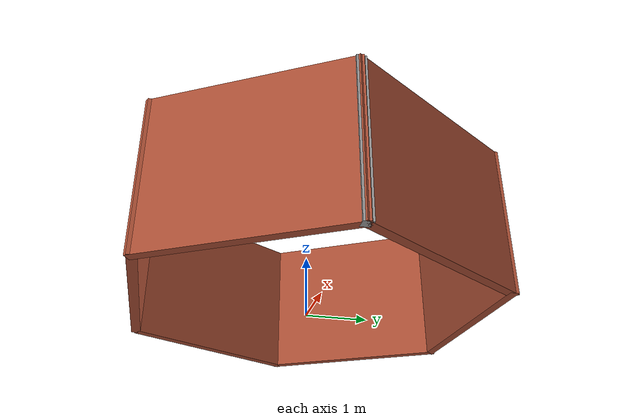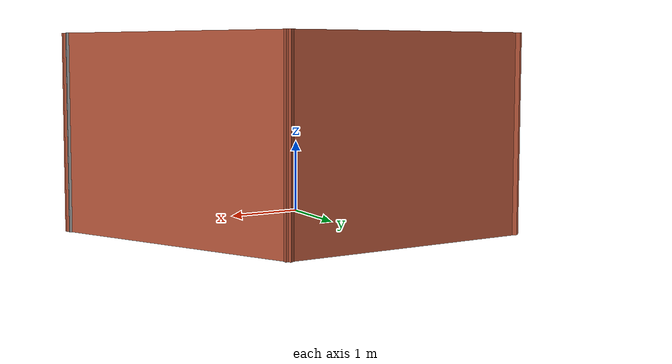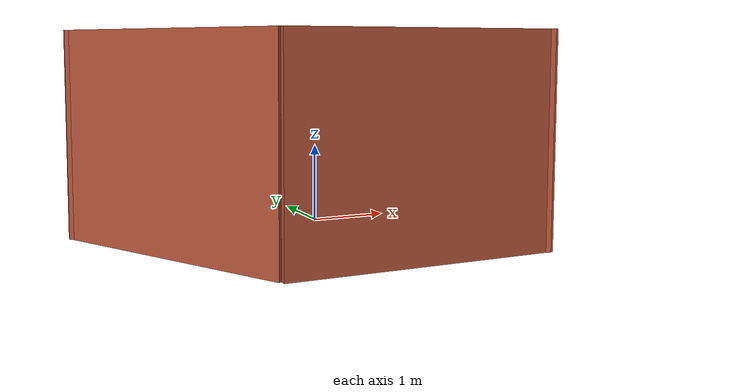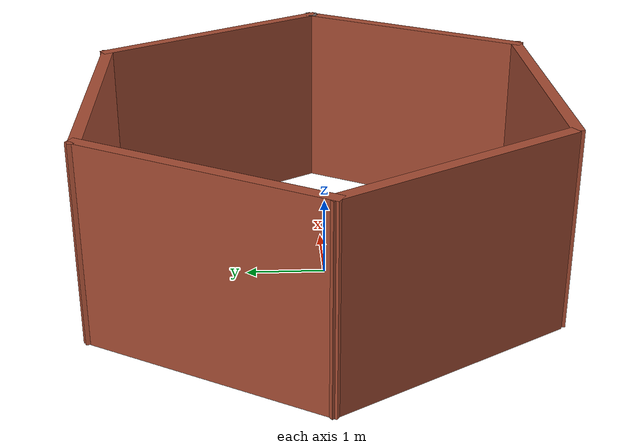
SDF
<?xml version='1.0'?>
<sdf version='1.7'>
  <model name='s6'>
    <pose>0.060122 0.045122 0 0 -0 0</pose>
    <link name='Wall_16'>
      <collision name='Wall_16_Collision'>
        <geometry>
          <box>
            <size>3.25 0.15 2.5</size>
          </box>
        </geometry>
        <pose>0 0 1.25 0 -0 0</pose>
      </collision>
      <visual name='Wall_16_Visual'>
        <pose>0 0 1.25 0 -0 0</pose>
        <geometry>
          <box>
            <size>3.25 0.15 2.5</size>
          </box>
        </geometry>
        <material>
          <script>
            <uri>file://media/materials/scripts/gazebo.material</uri>
            <name>Gazebo/Bricks</name>
          </script>
          <ambient>1 1 1 1</ambient>
        </material>
        <meta>
          <layer>0</layer>
        </meta>
      </visual>
      <pose>-0.040122 2.72488 0 0 -0 0</pose>
    </link>
    <link name='Wall_18'>
      <collision name='Wall_18_Collision'>
        <geometry>
          <box>
            <size>3.25 0.15 2.5</size>
          </box>
        </geometry>
        <pose>0 0 1.25 0 -0 0</pose>
      </collision>
      <visual name='Wall_18_Visual'>
        <pose>0 0 1.25 0 -0 0</pose>
        <geometry>
          <box>
            <size>3.25 0.15 2.5</size>
          </box>
        </geometry>
        <material>
          <script>
            <uri>file://media/materials/scripts/gazebo.material</uri>
            <name>Gazebo/Bricks</name>
          </script>
          <ambient>1 1 1 1</ambient>
        </material>
        <meta>
          <layer>0</layer>
        </meta>
      </visual>
      <pose>-2.36512 1.38254 0 0 -0 -2.0944</pose>
    </link>
    <link name='Wall_19'>
      <collision name='Wall_19_Collision'>
        <geometry>
          <box>
            <size>3.25 0.15 2.5</size>
          </box>
        </geometry>
        <pose>0 0 1.25 0 -0 0</pose>
      </collision>
      <visual name='Wall_19_Visual'>
        <pose>0 0 1.25 0 -0 0</pose>
        <geometry>
          <box>
            <size>3.25 0.15 2.5</size>
          </box>
        </geometry>
        <material>
          <script>
            <uri>file://media/materials/scripts/gazebo.material</uri>
            <name>Gazebo/Bricks</name>
          </script>
          <ambient>1 1 1 1</ambient>
        </material>
        <meta>
          <layer>0</layer>
        </meta>
      </visual>
      <pose>-2.36512 -1.30214 0 0 -0 -1.0472</pose>
    </link>
    <link name='Wall_22'>
      <collision name='Wall_22_Collision'>
        <geometry>
          <box>
            <size>3.25 0.15 2.5</size>
          </box>
        </geometry>
        <pose>0 0 1.25 0 -0 0</pose>
      </collision>
      <visual name='Wall_22_Visual'>
        <pose>0 0 1.25 0 -0 0</pose>
        <geometry>
          <box>
            <size>3.25 0.15 2.5</size>
          </box>
        </geometry>
        <material>
          <script>
            <uri>file://media/materials/scripts/gazebo.material</uri>
            <name>Gazebo/Bricks</name>
          </script>
          <ambient>1 1 1 1</ambient>
        </material>
        <meta>
          <layer>0</layer>
        </meta>
      </visual>
      <pose>0.039878 -2.72512 0 0 -0 3.14159</pose>
    </link>
    <link name='Wall_24'>
      <collision name='Wall_24_Collision'>
        <geometry>
          <box>
            <size>3.25 0.15 2.5</size>
          </box>
        </geometry>
        <pose>0 0 1.25 0 -0 0</pose>
      </collision>
      <visual name='Wall_24_Visual'>
        <pose>0 0 1.25 0 -0 0</pose>
        <geometry>
          <box>
            <size>3.25 0.15 2.5</size>
          </box>
        </geometry>
        <material>
          <script>
            <uri>file://media/materials/scripts/gazebo.material</uri>
            <name>Gazebo/Bricks</name>
          </script>
          <ambient>1 1 1 1</ambient>
        </material>
        <meta>
          <layer>0</layer>
        </meta>
      </visual>
      <pose>2.36488 -1.38278 0 0 -0 1.0472</pose>
    </link>
    <link name='Wall_25'>
      <collision name='Wall_25_Collision'>
        <geometry>
          <box>
            <size>0.15 0.15 2.5</size>
          </box>
        </geometry>
        <pose>0 0 1.25 0 -0 0</pose>
      </collision>
      <visual name='Wall_25_Visual'>
        <pose>0 0 1.25 0 -0 0</pose>
        <geometry>
          <box>
            <size>0.15 0.15 2.5</size>
          </box>
        </geometry>
        <material>
          <script>
            <uri>file://media/materials/scripts/gazebo.material</uri>
            <name>Gazebo/Grey</name>
          </script>
          <ambient>1 1 1 1</ambient>
        </material>
        <meta>
          <layer>0</layer>
        </meta>
      </visual>
      <pose>3.13988 -0.040443 0 0 -0 0</pose>
    </link>
    <link name='Wall_28'>
      <collision name='Wall_28_Collision'>
        <geometry>
          <box>
            <size>3.35997 0.15 2.5</size>
          </box>
        </geometry>
        <pose>0 0 1.25 0 -0 0</pose>
      </collision>
      <visual name='Wall_28_Visual'>
        <pose>0 0 1.25 0 -0 0</pose>
        <geometry>
          <box>
            <size>3.35997 0.15 2.5</size>
          </box>
        </geometry>
        <material>
          <script>
            <uri>file://media/materials/scripts/gazebo.material</uri>
            <name>Gazebo/Bricks</name>
          </script>
          <ambient>1 1 1 1</ambient>
        </material>
        <meta>
          <layer>0</layer>
        </meta>
      </visual>
      <pose>2.32488 1.34222 0 0 -0 -1.03818</pose>
    </link>
    <static>1</static>
  </model>
</sdf>
